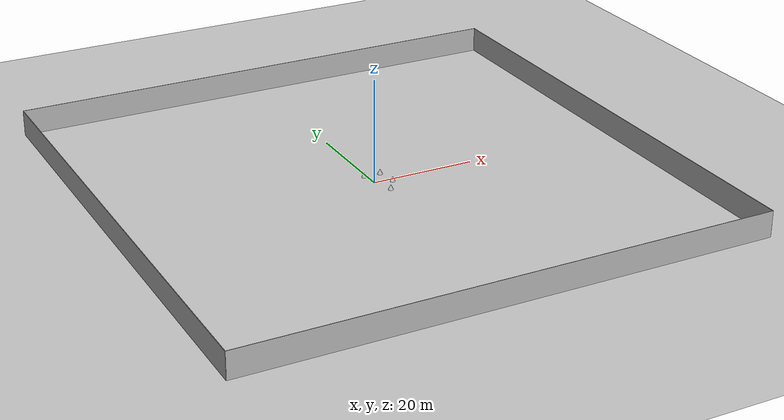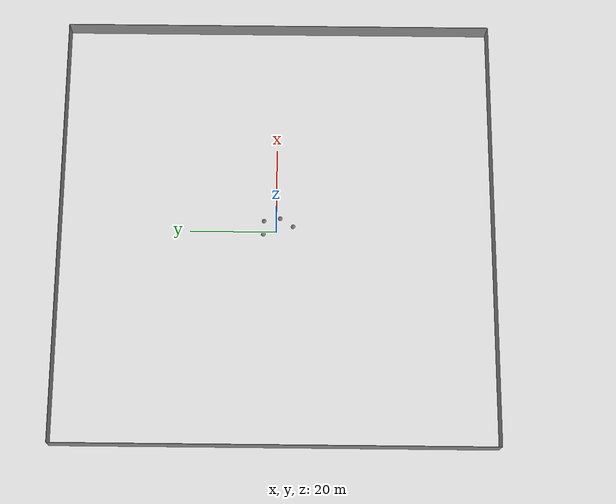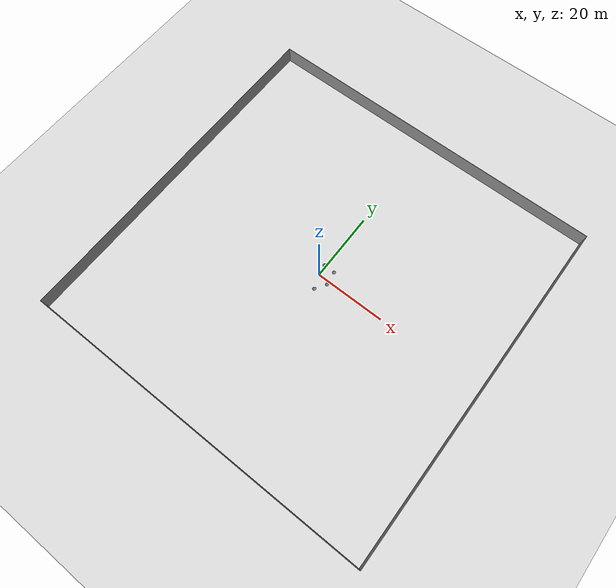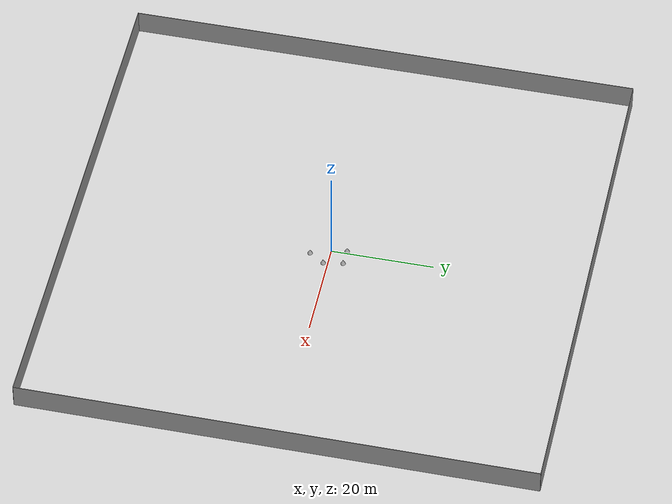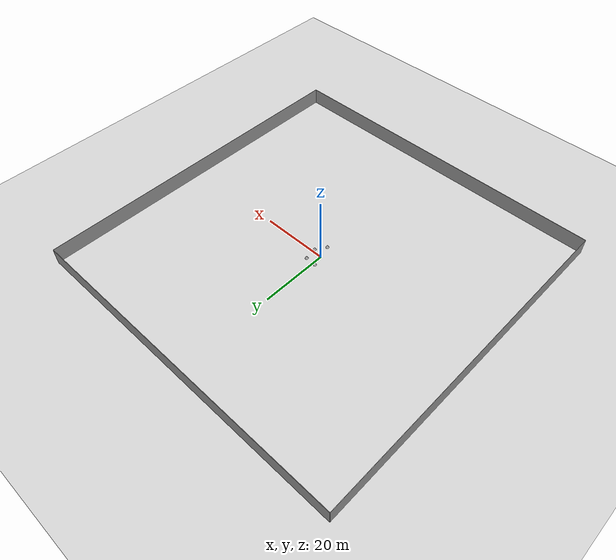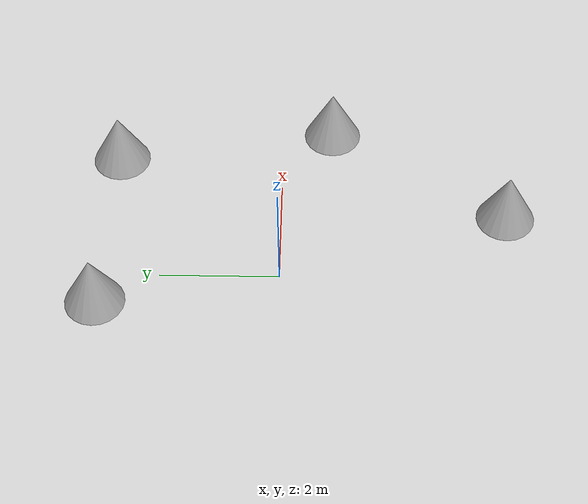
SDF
<sdf version='1.10'>
    <world name='empty'>
      <physics name='1ms' type='ignored'>
        <max_step_size>0.001</max_step_size>
        <real_time_factor>1</real_time_factor>
        <real_time_update_rate>1000</real_time_update_rate>
      </physics>
      <plugin name='gz::sim::systems::Physics' filename='gz-sim-physics-system'/>
      <plugin name='gz::sim::systems::UserCommands' filename='gz-sim-user-commands-system'/>
      <plugin name='gz::sim::systems::SceneBroadcaster' filename='gz-sim-scene-broadcaster-system'/>
      <plugin name='gz::sim::systems::Contact' filename='gz-sim-contact-system'/>
      <gravity>0 0 -9.8000000000000007</gravity>
      <magnetic_field>5.5644999999999998e-06 2.2875799999999999e-05 -4.2388400000000002e-05</magnetic_field>
      <atmosphere type='adiabatic'/>
      <scene>
        <ambient>0.400000006 0.400000006 0.400000006 1</ambient>
        <background>0.699999988 0.699999988 0.699999988 1</background>
        <shadows>true</shadows>
      </scene>
      <model name='ground_plane'>
        <static>true</static>
        <link name='link'>
          <collision name='collision'>
            <geometry>
              <plane>
                <normal>0 0 1</normal>
                <size>100 100</size>
              </plane>
            </geometry>
            <surface>
              <friction>
                <ode/>
              </friction>
              <bounce/>
              <contact/>
            </surface>
          </collision>
          <visual name='visual'>
            <geometry>
              <plane>
                <normal>0 0 1</normal>
                <size>100 100</size>
              </plane>
            </geometry>
            <material>
              <ambient>0.800000012 0.800000012 0.800000012 1</ambient>
              <diffuse>0.800000012 0.800000012 0.800000012 1</diffuse>
              <specular>0.800000012 0.800000012 0.800000012 1</specular>
            </material>
          </visual>
          <pose>0 0 0 0 0 0</pose>
          <inertial>
            <pose>0 0 0 0 0 0</pose>
            <mass>1</mass>
            <inertia>
              <ixx>1</ixx>
              <ixy>0</ixy>
              <ixz>0</ixz>
              <iyy>1</iyy>
              <iyz>0</iyz>
              <izz>1</izz>
            </inertia>
          </inertial>
          <enable_wind>false</enable_wind>
        </link>
        <pose>0 0 0 0 0 0</pose>
        <self_collide>false</self_collide>
      </model>
      <model name='cone'>
        <pose>1.337530072558226 -3.864154204644604 0.49999999602630396 2.1497078487466433e-09 -8.0145332263159201e-09 -1.8868665439760603e-14</pose>
        <link name='cone_link'>
          <inertial>
            <inertia>
              <ixx>0.074999999999999997</ixx>
              <ixy>0</ixy>
              <ixz>0</ixz>
              <iyy>0.074999999999999997</iyy>
              <iyz>0</iyz>
              <izz>0.074999999999999997</izz>
            </inertia>
            <mass>1</mass>
            <pose>0 0 0 0 0 0</pose>
          </inertial>
          <collision name='cone_collision'>
            <geometry>
              <cone>
                <radius>0.5</radius>
                <length>1</length>
              </cone>
            </geometry>
            <surface>
              <friction>
                <ode/>
              </friction>
              <bounce/>
              <contact/>
            </surface>
          </collision>
          <visual name='cone_visual'>
            <geometry>
              <cone>
                <radius>0.5</radius>
                <length>1</length>
              </cone>
            </geometry>
            <material>
              <ambient>0.300000012 0.300000012 0.300000012 1</ambient>
              <diffuse>0.699999988 0.699999988 0.699999988 1</diffuse>
              <specular>1 1 1 1</specular>
            </material>
          </visual>
          <pose>0 0 0 0 0 0</pose>
          <enable_wind>false</enable_wind>
        </link>
        <static>false</static>
        <self_collide>false</self_collide>
      </model>
      <model name='cone_0'>
        <pose>-0.54727835668925795 3.0198088293660081 0.49999999602630446 2.1475739836463426e-09 -8.0151053279101738e-09 -1.865904453420803e-14</pose>
        <link name='cone_link'>
          <inertial>
            <inertia>
              <ixx>0.074999999999999997</ixx>
              <ixy>0</ixy>
              <ixz>0</ixz>
              <iyy>0.074999999999999997</iyy>
              <iyz>0</iyz>
              <izz>0.074999999999999997</izz>
            </inertia>
            <mass>1</mass>
            <pose>0 0 0 0 0 0</pose>
          </inertial>
          <collision name='cone_collision'>
            <geometry>
              <cone>
                <radius>0.5</radius>
                <length>1</length>
              </cone>
            </geometry>
            <surface>
              <friction>
                <ode/>
              </friction>
              <bounce/>
              <contact/>
            </surface>
          </collision>
          <visual name='cone_visual'>
            <geometry>
              <cone>
                <radius>0.5</radius>
                <length>1</length>
              </cone>
            </geometry>
            <material>
              <ambient>0.300000012 0.300000012 0.300000012 1</ambient>
              <diffuse>0.699999988 0.699999988 0.699999988 1</diffuse>
              <specular>1 1 1 1</specular>
            </material>
          </visual>
          <pose>0 0 0 0 0 0</pose>
          <enable_wind>false</enable_wind>
        </link>
        <static>false</static>
        <self_collide>false</self_collide>
      </model>
      <model name='cone_1'>
        <pose>3.2901540607202469 -0.88081786545287422 0.49999999602630374 2.149203214352545e-09 -8.0146705016085554e-09 -3.0120056032256639e-15</pose>
        <link name='cone_link'>
          <inertial>
            <inertia>
              <ixx>0.074999999999999997</ixx>
              <ixy>0</ixy>
              <ixz>0</ixz>
              <iyy>0.074999999999999997</iyy>
              <iyz>0</iyz>
              <izz>0.074999999999999997</izz>
            </inertia>
            <mass>1</mass>
            <pose>0 0 0 0 0 0</pose>
          </inertial>
          <collision name='cone_collision'>
            <geometry>
              <cone>
                <radius>0.5</radius>
                <length>1</length>
              </cone>
            </geometry>
            <surface>
              <friction>
                <ode/>
              </friction>
              <bounce/>
              <contact/>
            </surface>
          </collision>
          <visual name='cone_visual'>
            <geometry>
              <cone>
                <radius>0.5</radius>
                <length>1</length>
              </cone>
            </geometry>
            <material>
              <ambient>0.300000012 0.300000012 0.300000012 1</ambient>
              <diffuse>0.699999988 0.699999988 0.699999988 1</diffuse>
              <specular>1 1 1 1</specular>
            </material>
          </visual>
          <pose>0 0 0 0 0 0</pose>
          <enable_wind>false</enable_wind>
        </link>
        <static>false</static>
        <self_collide>false</self_collide>
      </model>
      <model name='cone_2'>
        <pose>2.6528121162720573 2.8881434337610727 0.49999999602630374 2.1473310565761857e-09 -8.0151766898473715e-09 -2.8981491788586245e-15</pose>
        <link name='cone_link'>
          <inertial>
            <inertia>
              <ixx>0.074999999999999997</ixx>
              <ixy>0</ixy>
              <ixz>0</ixz>
              <iyy>0.074999999999999997</iyy>
              <iyz>0</iyz>
              <izz>0.074999999999999997</izz>
            </inertia>
            <mass>1</mass>
            <pose>0 0 0 0 0 0</pose>
          </inertial>
          <collision name='cone_collision'>
            <geometry>
              <cone>
                <radius>0.5</radius>
                <length>1</length>
              </cone>
            </geometry>
            <surface>
              <friction>
                <ode/>
              </friction>
              <bounce/>
              <contact/>
            </surface>
          </collision>
          <visual name='cone_visual'>
            <geometry>
              <cone>
                <radius>0.5</radius>
                <length>1</length>
              </cone>
            </geometry>
            <material>
              <ambient>0.300000012 0.300000012 0.300000012 1</ambient>
              <diffuse>0.699999988 0.699999988 0.699999988 1</diffuse>
              <specular>1 1 1 1</specular>
            </material>
          </visual>
          <pose>0 0 0 0 0 0</pose>
          <enable_wind>false</enable_wind>
        </link>
        <static>false</static>
        <self_collide>false</self_collide>
      </model>
      <light name='sun' type='directional'>
        <pose>0 0 10 0 0 0</pose>
        <cast_shadows>true</cast_shadows>
        <intensity>1</intensity>
        <direction>-0.5 0.10000000000000001 -0.90000000000000002</direction>
        <diffuse>0.800000012 0.800000012 0.800000012 1</diffuse>
        <specular>0.200000003 0.200000003 0.200000003 1</specular>
        <attenuation>
          <range>1000</range>
          <linear>0.0099999997764825821</linear>
          <constant>0.89999997615814209</constant>
          <quadratic>0.0010000000474974513</quadratic>
        </attenuation>
        <spot>
          <inner_angle>0</inner_angle>
          <outer_angle>0</outer_angle>
          <falloff>0</falloff>
        </spot>
      </light>
          <model name='wall_north'>
      <static>true</static>
      <pose>0 50 2.5 0 0 0</pose>
      <link name='link'>
        <collision name='collision'>
          <geometry>
            <box>
              <size>100 0.1 5</size>
            </box>
          </geometry>
        </collision>
        <visual name='visual'>
          <geometry>
            <box>
              <size>100 0.1 5</size>
            </box>
          </geometry>
          <material>
            <ambient>0.6 0.6 0.6 1</ambient>
            <diffuse>0.7 0.7 0.7 1</diffuse>
          </material>
        </visual>
      </link>
    </model>

    <model name='wall_south'>
      <static>true</static>
      <pose>0 -50 2.5 0 0 0</pose>
      <link name='link'>
        <collision name='collision'>
          <geometry>
            <box>
              <size>100 0.1 5</size>
            </box>
          </geometry>
        </collision>
        <visual name='visual'>
          <geometry>
            <box>
              <size>100 0.1 5</size>
            </box>
          </geometry>
          <material>
            <ambient>0.6 0.6 0.6 1</ambient>
            <diffuse>0.7 0.7 0.7 1</diffuse>
          </material>
        </visual>
      </link>
    </model>

    <model name='wall_east'>
      <static>true</static>
      <pose>50 0 2.5 0 0 0</pose>
      <link name='link'>
        <collision name='collision'>
          <geometry>
            <box>
              <size>0.1 100 5</size>
            </box>
          </geometry>
        </collision>
        <visual name='visual'>
          <geometry>
            <box>
              <size>0.1 100 5</size>
            </box>
          </geometry>
          <material>
            <ambient>0.6 0.6 0.6 1</ambient>
            <diffuse>0.7 0.7 0.7 1</diffuse>
          </material>
        </visual>
      </link>
    </model>
    <model name='wall_west'>
      <static>true</static>
      <pose>-50 0 2.5 0 0 0</pose>
      <link name='link'>
        <collision name='collision'>
          <geometry>
            <box>
              <size>0.1 100 5</size>
            </box>
          </geometry>
        </collision>
        <visual name='visual'>
          <geometry>
            <box>
              <size>0.1 100 5</size>
            </box>
          </geometry>
          <material>
            <ambient>0.6 0.6 0.6 1</ambient>
            <diffuse>0.7 0.7 0.7 1</diffuse>
          </material>
        </visual>
      </link>
    </model>
    </world>
  </sdf>
